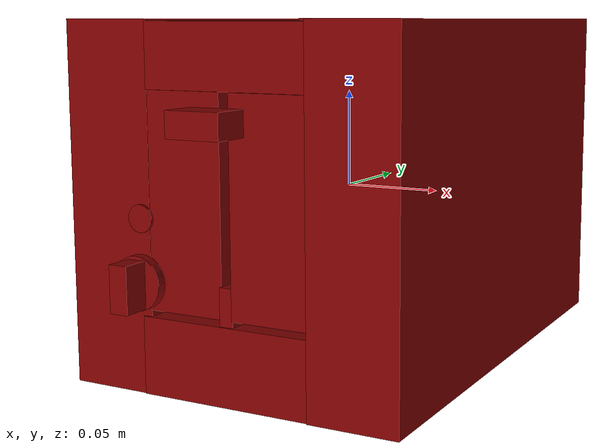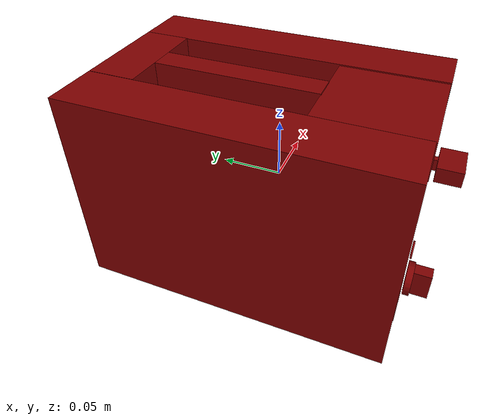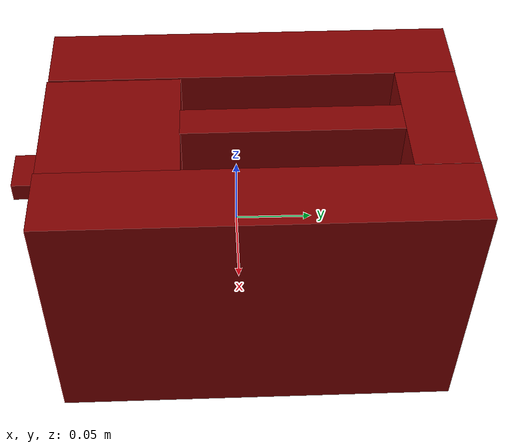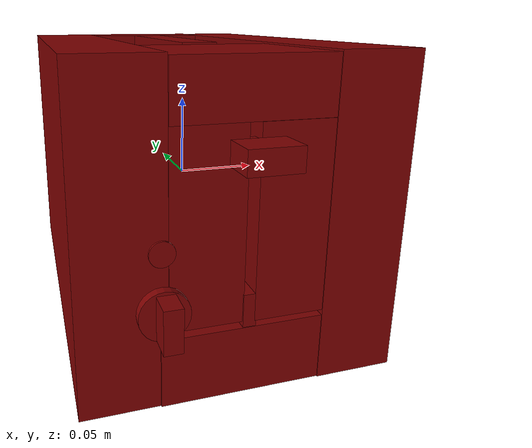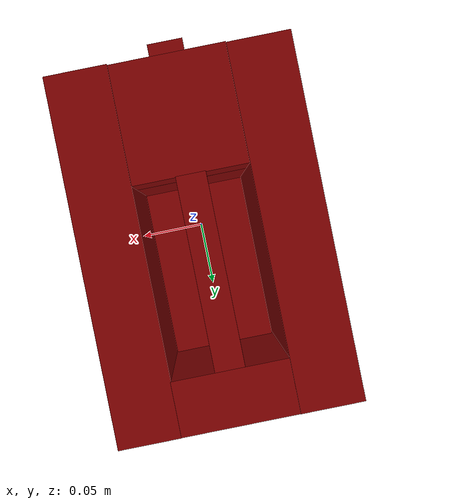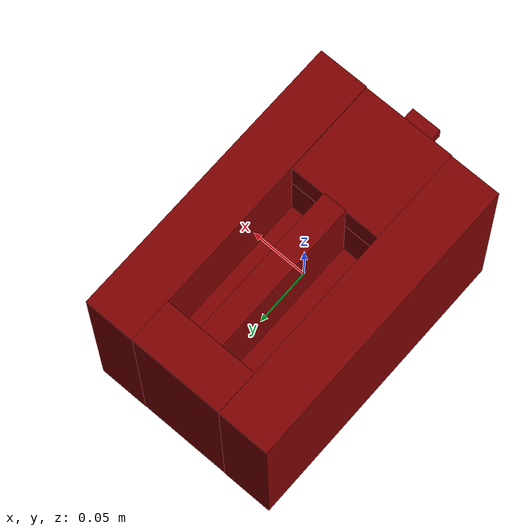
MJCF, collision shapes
<?xml version='1.0' encoding='UTF-8'?>
<mujoco model="model">
  <option timestep="0.002" gravity="0.0 0.0 -9.81"/>
  <compiler angle="radian"/>
  <asset>
    <mesh file="visuals/button_cancel.obj" name="button_cancel_vis"/>
    <mesh file="visuals/knob_doneness.obj" name="knob_doneness_vis"/>
    <mesh file="visuals/lever.obj" name="lever_vis"/>
    <mesh file="visuals/Body001.obj" name="Body001_vis"/>
    <texture file="visuals/T_BC001.png" name="Body001_material" type="2d"/>
    <material name="Body001_material" rgba="1 1 1 1.0" texture="Body001_material" shininess="0.1" specular="5"/>
    <texture file="visuals/T_BC001.png" name="button_cancel_material" type="2d"/>
    <material name="button_cancel_material" rgba="1 1 1 1.0" texture="button_cancel_material" shininess="0.1" specular="5"/>
    <texture file="visuals/T_BC001.png" name="knob_doneness_material" type="2d"/>
    <material name="knob_doneness_material" rgba="1 1 1 1.0" texture="knob_doneness_material" shininess="0.1" specular="5"/>
    <texture file="visuals/T_BC001.png" name="lever_material" type="2d"/>
    <material name="lever_material" rgba="1 1 1 1.0" texture="lever_material" shininess="0.1" specular="5"/>
  </asset>
  <default>
    <default class="visual">
      <geom conaffinity="0" contype="0" group="1" type="mesh"/>
    </default>
    <default class="collision_1">
      <geom group="0" rgba="0.5 0 0 0.5" solref="0.004 1" solimp="0.998 0.998 0.001"/>
    </default>
    <default class="collision_2">
      <geom group="0" rgba="0.5 0 0 0.5" solref="0.004 1" solimp="0.998 0.998 0.001"/>
    </default>
    <default class="collision_3">
      <geom group="0" rgba="0.5 0 0 0.5" solref="0.004 1" solimp="0.998 0.998 0.001"/>
    </default>
    <default class="collision_4">
      <geom group="0" rgba="0.5 0 0 0.5" solref="0.004 1" solimp="0.998 0.998 0.001"/>
    </default>
    <default class="spawn">
      <geom group="0" rgba="1 1 1 0.5" contype="0" conaffinity="0"/>
      <site group="0" rgba="1 1 1 0.5"/>
    </default>
    <default class="region">
      <geom group="1" conaffinity="0" contype="0" rgba="0 1 0 0" mass="0"/>
    </default>
  </default>
  <worldbody>
    <body>
      <body name="object">
        <geom mesh="Body001_vis" type="mesh" solimp="0.998 0.998 0.001" solref="0.001 1" friction="0.95 0.3 0.1" class="visual" material="Body001_material"/>
        <geom type="box" pos="-0.06400539726018906 0.011940869502723217 0.0003862087905872613" size="0.022658096626400948 0.12961532175540924 0.08722088485956192" quat="1.0 0.0 0.0 0.0" class="collision_1"/>
        <geom type="box" pos="0.0638289675116539 0.011217625811696053 0.0003862087905872613" size="0.022320302203297615 0.13033854961395264 0.08722088485956192" quat="1.0 0.0 0.0 0.0" class="collision_1"/>
        <geom type="box" pos="0.00017587095499038696 0.03397093713283539 0.018959475681185722" size="0.010625428520143032 0.06839926540851593 0.06879257410764694" quat="1.0 0.0 0.0 0.0" class="collision_1"/>
        <geom type="box" pos="0.00035841501085087657 0.1218574047088623 0.0005311719141900539" size="0.04163024574518204 0.01949259079992771 0.08722088485956192" quat="1.0 0.0 0.0 0.0" class="collision_1"/>
        <geom type="box" pos="2.2369349608197808e-05 -0.008424283936619759 -0.06799530982971191" size="0.04557693004608154 0.11023993790149689 0.018694402649998665" quat="1.0 0.0 0.0 0.0" class="collision_1"/>
        <geom type="box" pos="0.00035841501085087657 -0.07627751678228378 0.07131405174732208" size="0.04163024574518204 0.04238671809434891 0.01524488814175129" quat="1.0 0.0 0.0 0.0" class="collision_1"/>
        <geom type="box" pos="-0.021906234323978424 -0.07578262686729431 0.004895842634141445" size="0.019365597516298294 0.041891828179359436 0.05105547979474068" quat="1.0 0.0 0.0 0.0" class="collision_1"/>
        <geom type="box" pos="0.022510794922709465 -0.07627751678228378 0.004929100163280964" size="0.019365597516298294 0.04238671809434891 0.05102222040295601" quat="1.0 0.0 0.0 0.0" class="collision_1"/>
        <geom type="box" pos="0.00036750733852386475 -0.07627751678228378 -0.039974845945835114" size="0.0034849767107516527 0.042386677116155624 0.008998068980872631" quat="1.0 0.0 0.0 0.0" class="collision_1"/>
        <body name="button_cancel">
          <joint axis="0.0 1.0 0.0" pos="-0.04502039775252342 -0.11916005611419678 -0.0031388550996780396" limited="true" name="button_cancel_joint" range="0.0 0.001" type="slide" damping="1" frictionloss="1" armature=".01" stiffness="4" springref="-1"/>
          <geom mesh="button_cancel_vis" type="mesh" solimp="0.998 0.998 0.001" solref="0.001 1" friction="0.95 0.3 0.1" class="visual" material="button_cancel_material"/>
          <geom class="collision_2" type="cylinder" pos="-0.04498175531625748 -0.11958211660385132 -0.003092725994065404" size="0.00656898831948638 0.0006258270586840808" quat="0.7071067094802856 0.7071068286895752 0.0 0.0" name="button_cancel_main"/>
        </body>
        <body name="knob_doneness">
          <joint axis="0.0 1.0 0.0" pos="-0.04491473361849785 -0.12483047693967819 -0.03261572867631912" limited="true" name="knob_doneness_joint" range="0.0 5.410520681182422" type="hinge" damping="0.05" frictionloss="0.75" armature="1"/>
          <geom mesh="knob_doneness_vis" type="mesh" solimp="0.998 0.998 0.001" solref="0.001 1" friction="0.95 0.3 0.1" class="visual" material="knob_doneness_material"/>
          <geom type="cylinder" pos="-0.044928088784217834 -0.12200231105089188 -0.03262140974402428" size="0.012946147471666336 0.0024343591649085283" quat="0.7071067094802856 0.7071068286895752 0.0 0.0" class="collision_3" friction="100 0.5 0.01"/>
          <geom class="collision_3" type="box" pos="-0.04446423053741455 -0.13090379536151886 -0.03278791159391403" size="0.004793843254446983 0.006837025284767151 0.01128111407160759" quat="1.0 0.0 0.0 0.0" name="knob_doneness_main" friction="100 0.5 0.01"/>
        </body>
        <body name="lever">
          <joint axis="0.0 0.0 -1.0" pos="1.8379651010036469e-06 -0.126191645860672 0.043219029903411865" limited="true" name="lever_joint" range="0.0 0.059000000000000004" type="slide" damping="1" frictionloss="1" armature=".1" stiffness="2.8" springref="-0.5"/>
          <geom class="region" name="reg_slotL" type="box" pos="-0.025859355926513672 0.03418431989848614 0.08652409072965384" size="0.016339363366365434 0.06902387721836567 0.07599996665865183"/>
          <geom class="region" name="reg_slotR" type="box" pos="0.026202025823295116 0.03418431989848614 0.08652409072965384" size="0.01617303753644228 0.06902387721836567 0.07599996665865183"/>
          <geom mesh="lever_vis" type="mesh" solimp="0.998 0.998 0.001" solref="0.001 1" friction="0.95 0.3 0.1" class="visual" material="lever_material"/>
          <geom class="collision_4" type="box" pos="-0.00020210449292790145 -0.13170504570007324 0.04321486875414848" size="0.013609479181468487 0.0095586646348238 0.006129779852926731" quat="1.0 0.0 0.0 0.0" name="lever_handle"/>
          <geom type="box" pos="0.00010211656626779586 -0.11698221415281296 0.043239351361989975" size="0.0024376683868467808 0.00499670160934329 0.004550072830170393" quat="1.0 0.0 0.0 0.0" class="collision_4"/>
          <geom class="collision_4" type="box" pos="-0.02565935254096985 0.03408454731106758 0.01102297194302082" size="0.014040008187294006 0.06624030321836472 0.0002580166910775006" quat="1.0 0.0 0.0 0.0" name="slotL_floor"/>
          <geom class="collision_4" type="box" pos="0.026169415563344955 0.03408454731106758 0.01102297194302082" size="0.014040029607713223 0.06624038517475128 0.0002580166910775006" quat="1.0 0.0 0.0 0.0" name="slotR_floor"/>
        </body>
        <geom class="region" name="reg_main" type="box" pos="-1.862645149230957e-09 0.011367946863174438 0.0" size="0.08669683134555817 0.13080511784553528 0.0874655077457428"/>
      </body>
    </body>
  </worldbody>
  <actuator>
    <motor name="button_cancel_joint_actuator" joint="button_cancel_joint" gear="0.5"/>
    <motor name="knob_doneness_joint_actuator" joint="knob_doneness_joint" gear="0.5"/>
    <motor name="lever_joint_actuator" joint="lever_joint" gear="0.5"/>
  </actuator>
</mujoco>
